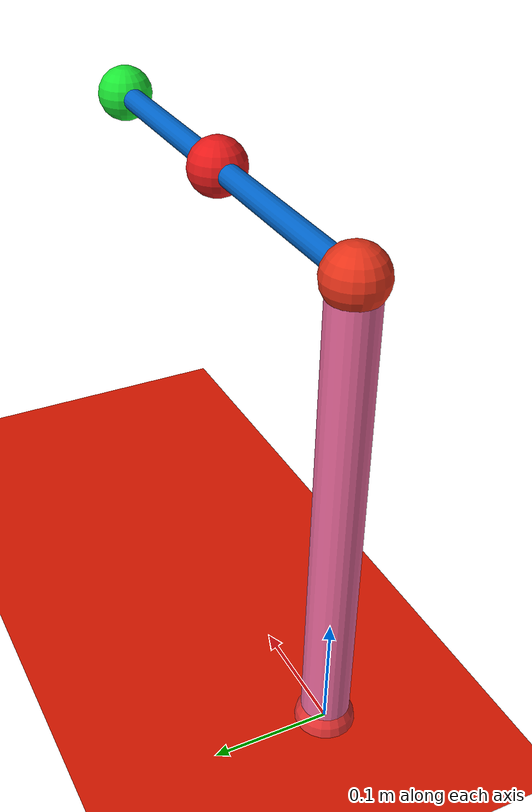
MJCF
<mujoco model="3DoF2Targ">
	<compiler angle="radian" inertiafromgeom="true"/>
	<default>
		<joint armature="1" damping="1" limited="false"/>
		<geom contype="0" friction="1 0.1 0.1" rgba="0.7 0.7 0 1"/>
	</default>

	<option integrator="RK4" iterations="50" solver="PGS" timestep="0.003">
	</option>
	<worldbody>
		<!-- Arena -->
		<geom conaffinity="0" contype="0" name="ground" pos="0 0 0" rgba="0.9 0.1 0.0 1" size="1 1 10" type="plane"/>

		<!-- Base -->
		<geom conaffinity="0" contype="0" fromto="0 0 0 0 0 0.4" name="base" rgba="0.9 0.4 0.6 1" size=".02" type="cylinder"/>

		<!-- Arm -->
		<body name="robot_arm" pos="0 0 0.41">
			<geom name="robot_shoulder" pos="0 0 0" rgba="0.9 0.2 0.1 0.9" size=".025" type="sphere"/>
			<joint axis="0 0 1" limited="false" name="robot_shoulder_joint" pos="0 0 0" type="hinge"/>
			<geom fromto="0 0 0 0.2 0 0" name="robot_arm0" rgba="0.0 0.4 0.8 0.9" size=".01" type="capsule"/>

			<!-- Lower Arm -->
			<body name="robot_arm1" pos="0.21 0 0">
				<body name="robot_elbow" pos="0 0 0">
					<geom contype="0" conaffinity="0" pos="0 0 0" name="robot_arm1" rgba="0.9 0.1 0.1 0.9" size=".025" type="sphere"/>
				</body>

				<joint axis="0 1 0" limited="false" name="robot_elbow_joint_x" pos="0 0 0" type="hinge"/>
				<joint axis="0 0 1" limited="false" name="robot_elbow_joint_y" pos="0 0 0" type="hinge"/>
				<geom contype="0" conaffinity="0" fromto="0 0 0 0.2 0 0" name="robot_arm1" rgba="0.0 0.4 0.8 0.9" size=".01" type="capsule"/>

				<!-- Hand -->
				<body name="robot_hand" pos="0.2 0 0">
					<geom conaffinity="0" contype="0" pos="0 0 0" name="robot_hand" rgba="0.1 0.9 0.2 0.9" size=".025" type="sphere"/>
				</body>
			</body>
		</body>

		<!-- Target1 -->
		<body name="target_elbow" pos="0 0 0">
			<joint armature="0" axis="1 0 0" damping="0"  name="target_x0" pos="0 0 0" type="slide"/>
			<joint armature="0" axis="0 1 0" damping="0"  name="target_y0" pos="0 0 0" type="slide"/>
			<joint armature="0" axis="0 0 1" damping="0"  name="target_z0" pos="0 0 0" type="slide"/>
			<geom conaffinity="0" contype="0" name="target_elbow" pos="0 0 0" rgba="0.9 0.2 0.2 1" size=".025" type="sphere" mass="0"/>
		</body>
		<!-- Target2 -->
		<body name="target_hand" pos="0 0 0">
			<joint armature="0" axis="1 0 0" damping="0" name="target_x1" pos="0 0 0" type="slide"/>
			<joint armature="0" axis="0 1 0" damping="0" name="target_y1" pos="0 0 0" type="slide"/>
			<joint armature="0" axis="0 0 1" damping="0" name="target_z1" pos="0 0 0" type="slide"/>
			<geom conaffinity="0" contype="0" name="target_hand" pos="0 0 0" rgba="0.2 0.9 0.2 1" size=".025" type="sphere" mass="0"/>
		</body>
	</worldbody>
	<actuator>
		<motor gear="200.0" joint="robot_shoulder_joint"/>
		<motor gear="200.0" joint="robot_elbow_joint_x"/>
		<motor  gear="200.0" joint="robot_elbow_joint_y"/>
	</actuator>
</mujoco>
